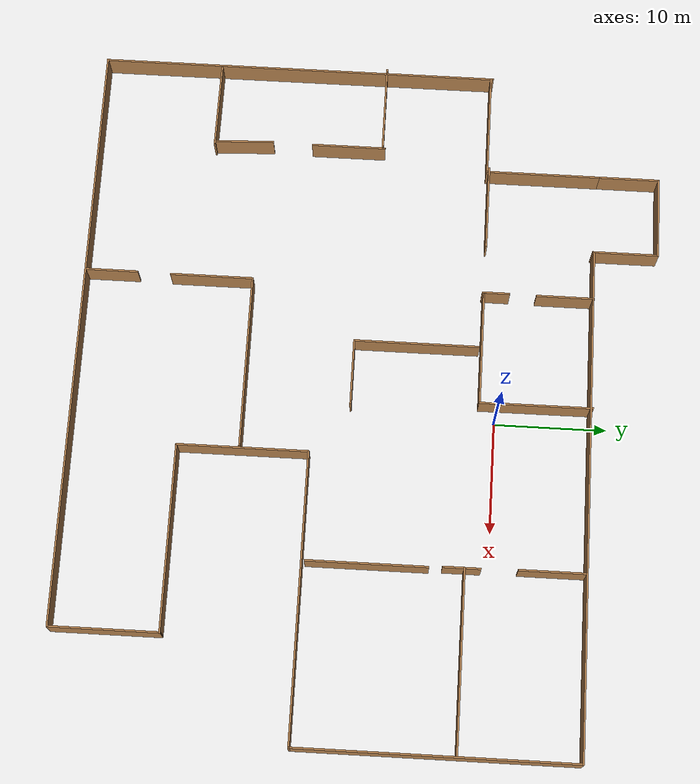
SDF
<?xml version='1.0'?>
<sdf version='1.7'>
  <model name='walls'>
    <pose>-1.78247 -11.6591 0 0 -0 0</pose>
    <link name='Wall_10'>
      <collision name='Wall_10_Collision'>
        <geometry>
          <box>
            <size>53.5217 0.15 2.5</size>
          </box>
        </geometry>
        <pose>0 0 1.25 0 -0 0</pose>
      </collision>
      <visual name='Wall_10_Visual'>
        <pose>0 0 1.25 0 -0 0</pose>
        <geometry>
          <box>
            <size>53.5217 0.15 2.5</size>
          </box>
        </geometry>
        <material>
          <script>
            <uri>file://media/materials/scripts/gazebo.material</uri>
            <name>Gazebo/Wood</name>
          </script>
          <ambient>1 1 1 1</ambient>
        </material>
        <meta>
          <layer>0</layer>
        </meta>
      </visual>
      <pose>-4.29579 -25.775 0 0 -0 3.14159</pose>
    </link>
    <link name='Wall_11'>
      <collision name='Wall_11_Collision'>
        <geometry>
          <box>
            <size>36 0.15 2.5</size>
          </box>
        </geometry>
        <pose>0 0 1.25 0 -0 0</pose>
      </collision>
      <visual name='Wall_11_Visual'>
        <pose>0 0 1.25 0 -0 0</pose>
        <geometry>
          <box>
            <size>36 0.15 2.5</size>
          </box>
        </geometry>
        <material>
          <script>
            <uri>file://media/materials/scripts/gazebo.material</uri>
            <name>Gazebo/Wood</name>
          </script>
          <ambient>1 1 1 1</ambient>
        </material>
        <meta>
          <layer>0</layer>
        </meta>
      </visual>
      <pose>-30.9816 -7.68633 0 0 -0 1.5708</pose>
    </link>
    <link name='Wall_12'>
      <collision name='Wall_12_Collision'>
        <geometry>
          <box>
            <size>9.52171 0.15 2.5</size>
          </box>
        </geometry>
        <pose>0 0 1.25 0 -0 0</pose>
      </collision>
      <visual name='Wall_12_Visual'>
        <pose>0 0 1.25 0 -0 0</pose>
        <geometry>
          <box>
            <size>9.52171 0.15 2.5</size>
          </box>
        </geometry>
        <material>
          <script>
            <uri>file://media/materials/scripts/gazebo.material</uri>
            <name>Gazebo/Wood</name>
          </script>
          <ambient>1 1 1 1</ambient>
        </material>
        <meta>
          <layer>0</layer>
        </meta>
      </visual>
      <pose>-26.2958 10.075 0 0 -0 0</pose>
    </link>
    <link name='Wall_13'>
      <collision name='Wall_13_Collision'>
        <geometry>
          <box>
            <size>10.5 0.15 2.5</size>
          </box>
        </geometry>
        <pose>0 0 1.25 0 -0 0</pose>
      </collision>
      <visual name='Wall_13_Visual'>
        <pose>0 0 1.25 0 -0 0</pose>
        <geometry>
          <box>
            <size>10.5 0.15 2.5</size>
          </box>
        </geometry>
        <material>
          <script>
            <uri>file://media/materials/scripts/gazebo.material</uri>
            <name>Gazebo/Wood</name>
          </script>
          <ambient>1 1 1 1</ambient>
        </material>
        <meta>
          <layer>0</layer>
        </meta>
      </visual>
      <pose>-21.6099 15.25 0 0 -0 1.5708</pose>
    </link>
    <link name='Wall_14'>
      <collision name='Wall_14_Collision'>
        <geometry>
          <box>
            <size>5.5 0.15 2.5</size>
          </box>
        </geometry>
        <pose>0 0 1.25 0 -0 0</pose>
      </collision>
      <visual name='Wall_14_Visual'>
        <pose>0 0 1.25 0 -0 0</pose>
        <geometry>
          <box>
            <size>5.5 0.15 2.5</size>
          </box>
        </geometry>
        <material>
          <script>
            <uri>file://media/materials/scripts/gazebo.material</uri>
            <name>Gazebo/Wood</name>
          </script>
          <ambient>1 1 1 1</ambient>
        </material>
        <meta>
          <layer>0</layer>
        </meta>
      </visual>
      <pose>-21.6099 23.1 0 0 -0 1.5708</pose>
    </link>
    <link name='Wall_15'>
      <collision name='Wall_15_Collision'>
        <geometry>
          <box>
            <size>7.5 0.15 2.5</size>
          </box>
        </geometry>
        <pose>0 0 1.25 0 -0 0</pose>
      </collision>
      <visual name='Wall_15_Visual'>
        <pose>0 0 1.25 0 -0 0</pose>
        <geometry>
          <box>
            <size>7.5 0.15 2.5</size>
          </box>
        </geometry>
        <material>
          <script>
            <uri>file://media/materials/scripts/gazebo.material</uri>
            <name>Gazebo/Wood</name>
          </script>
          <ambient>1 1 1 1</ambient>
        </material>
        <meta>
          <layer>0</layer>
        </meta>
      </visual>
      <pose>-17.9349 25.775 0 0 -0 0</pose>
    </link>
    <link name='Wall_16'>
      <collision name='Wall_16_Collision'>
        <geometry>
          <box>
            <size>6 0.15 2.5</size>
          </box>
        </geometry>
        <pose>0 0 1.25 0 -0 0</pose>
      </collision>
      <visual name='Wall_16_Visual'>
        <pose>0 0 1.25 0 -0 0</pose>
        <geometry>
          <box>
            <size>6 0.15 2.5</size>
          </box>
        </geometry>
        <material>
          <script>
            <uri>file://media/materials/scripts/gazebo.material</uri>
            <name>Gazebo/Wood</name>
          </script>
          <ambient>1 1 1 1</ambient>
        </material>
        <meta>
          <layer>0</layer>
        </meta>
      </visual>
      <pose>-14.2599 22.85 0 0 -0 -1.5708</pose>
    </link>
    <link name='Wall_20'>
      <collision name='Wall_20_Collision'>
        <geometry>
          <box>
            <size>6 0.15 2.5</size>
          </box>
        </geometry>
        <pose>0 0 1.25 0 -0 0</pose>
      </collision>
      <visual name='Wall_20_Visual'>
        <pose>0 0 1.25 0 -0 0</pose>
        <geometry>
          <box>
            <size>6 0.15 2.5</size>
          </box>
        </geometry>
        <material>
          <script>
            <uri>file://media/materials/scripts/gazebo.material</uri>
            <name>Gazebo/Wood</name>
          </script>
          <ambient>1 1 1 1</ambient>
        </material>
        <meta>
          <layer>0</layer>
        </meta>
      </visual>
      <pose>15.2986 17.0852 0 0 -0 -1.5708</pose>
    </link>
    <link name='Wall_22'>
      <collision name='Wall_22_Collision'>
        <geometry>
          <box>
            <size>16 0.15 2.5</size>
          </box>
        </geometry>
        <pose>0 0 1.25 0 -0 0</pose>
      </collision>
      <visual name='Wall_22_Visual'>
        <pose>0 0 1.25 0 -0 0</pose>
        <geometry>
          <box>
            <size>16 0.15 2.5</size>
          </box>
        </geometry>
        <material>
          <script>
            <uri>file://media/materials/scripts/gazebo.material</uri>
            <name>Gazebo/Wood</name>
          </script>
          <ambient>1 1 1 1</ambient>
        </material>
        <meta>
          <layer>0</layer>
        </meta>
      </visual>
      <pose>23.3057 9.48549 0 0 -0 3.14159</pose>
    </link>
    <link name='Wall_23'>
      <collision name='Wall_23_Collision'>
        <geometry>
          <box>
            <size>1.5 0.15 2.5</size>
          </box>
        </geometry>
        <pose>0 0 1.25 0 -0 0</pose>
      </collision>
      <visual name='Wall_23_Visual'>
        <pose>0 0 1.25 0 -0 0</pose>
        <geometry>
          <box>
            <size>1.5 0.15 2.5</size>
          </box>
        </geometry>
        <material>
          <script>
            <uri>file://media/materials/scripts/gazebo.material</uri>
            <name>Gazebo/Wood</name>
          </script>
          <ambient>1 1 1 1</ambient>
        </material>
        <meta>
          <layer>0</layer>
        </meta>
      </visual>
      <pose>15.3807 10.1605 0 0 -0 1.5708</pose>
    </link>
    <link name='Wall_25'>
      <collision name='Wall_25_Collision'>
        <geometry>
          <box>
            <size>2 0.15 2.5</size>
          </box>
        </geometry>
        <pose>0 0 1.25 0 -0 0</pose>
      </collision>
      <visual name='Wall_25_Visual'>
        <pose>0 0 1.25 0 -0 0</pose>
        <geometry>
          <box>
            <size>2 0.15 2.5</size>
          </box>
        </geometry>
        <material>
          <script>
            <uri>file://media/materials/scripts/gazebo.material</uri>
            <name>Gazebo/Wood</name>
          </script>
          <ambient>1 1 1 1</ambient>
        </material>
        <meta>
          <layer>0</layer>
        </meta>
      </visual>
      <pose>15.3807 8.56049 0 0 -0 -1.5708</pose>
    </link>
    <link name='Wall_27'>
      <collision name='Wall_27_Collision'>
        <geometry>
          <box>
            <size>10.75 0.15 2.5</size>
          </box>
        </geometry>
        <pose>0 0 1.25 0 -0 0</pose>
      </collision>
      <visual name='Wall_27_Visual'>
        <pose>0 0 1.25 0 -0 0</pose>
        <geometry>
          <box>
            <size>10.75 0.15 2.5</size>
          </box>
        </geometry>
        <material>
          <script>
            <uri>file://media/materials/scripts/gazebo.material</uri>
            <name>Gazebo/Wood</name>
          </script>
          <ambient>1 1 1 1</ambient>
        </material>
        <meta>
          <layer>0</layer>
        </meta>
      </visual>
      <pose>15.4704 1.05331 0 0 -0 -1.5708</pose>
    </link>
    <link name='Wall_29'>
      <collision name='Wall_29_Collision'>
        <geometry>
          <box>
            <size>10.1129 0.15 2.5</size>
          </box>
        </geometry>
        <pose>0 0 1.25 0 -0 0</pose>
      </collision>
      <visual name='Wall_29_Visual'>
        <pose>0 0 1.25 0 -0 0</pose>
        <geometry>
          <box>
            <size>10.1129 0.15 2.5</size>
          </box>
        </geometry>
        <material>
          <script>
            <uri>file://media/materials/scripts/gazebo.material</uri>
            <name>Gazebo/Wood</name>
          </script>
          <ambient>1 1 1 1</ambient>
        </material>
        <meta>
          <layer>0</layer>
        </meta>
      </visual>
      <pose>0.506797 15.1957 0 0 -0 -1.56767</pose>
    </link>
    <link name='Wall_30'>
      <collision name='Wall_30_Collision'>
        <geometry>
          <box>
            <size>10.25 0.15 2.5</size>
          </box>
        </geometry>
        <pose>0 0 1.25 0 -0 0</pose>
      </collision>
      <visual name='Wall_30_Visual'>
        <pose>0 0 1.25 0 -0 0</pose>
        <geometry>
          <box>
            <size>10.25 0.15 2.5</size>
          </box>
        </geometry>
        <material>
          <script>
            <uri>file://media/materials/scripts/gazebo.material</uri>
            <name>Gazebo/Wood</name>
          </script>
          <ambient>1 1 1 1</ambient>
        </material>
        <meta>
          <layer>0</layer>
        </meta>
      </visual>
      <pose>-4.58952 10.2145 0 0 -0 3.14159</pose>
    </link>
    <link name='Wall_32'>
      <collision name='Wall_32_Collision'>
        <geometry>
          <box>
            <size>7.75 0.15 2.5</size>
          </box>
        </geometry>
        <pose>0 0 1.25 0 -0 0</pose>
      </collision>
      <visual name='Wall_32_Visual'>
        <pose>0 0 1.25 0 -0 0</pose>
        <geometry>
          <box>
            <size>7.75 0.15 2.5</size>
          </box>
        </geometry>
        <material>
          <script>
            <uri>file://media/materials/scripts/gazebo.material</uri>
            <name>Gazebo/Wood</name>
          </script>
          <ambient>1 1 1 1</ambient>
        </material>
        <meta>
          <layer>0</layer>
        </meta>
      </visual>
      <pose>-18.1561 10.2419 0 0 -0 0</pose>
    </link>
    <link name='Wall_34'>
      <collision name='Wall_34_Collision'>
        <geometry>
          <box>
            <size>5.25 0.15 2.5</size>
          </box>
        </geometry>
        <pose>0 0 1.25 0 -0 0</pose>
      </collision>
      <visual name='Wall_34_Visual'>
        <pose>0 0 1.25 0 -0 0</pose>
        <geometry>
          <box>
            <size>5.25 0.15 2.5</size>
          </box>
        </geometry>
        <material>
          <script>
            <uri>file://media/materials/scripts/gazebo.material</uri>
            <name>Gazebo/Wood</name>
          </script>
          <ambient>1 1 1 1</ambient>
        </material>
        <meta>
          <layer>0</layer>
        </meta>
      </visual>
      <pose>-9.77624 17.5261 0 0 -0 -1.5708</pose>
    </link>
    <link name='Wall_36'>
      <collision name='Wall_36_Collision'>
        <geometry>
          <box>
            <size>2.5 0.15 2.5</size>
          </box>
        </geometry>
        <pose>0 0 1.25 0 -0 0</pose>
      </collision>
      <visual name='Wall_36_Visual'>
        <pose>0 0 1.25 0 -0 0</pose>
        <geometry>
          <box>
            <size>2.5 0.15 2.5</size>
          </box>
        </geometry>
        <material>
          <script>
            <uri>file://media/materials/scripts/gazebo.material</uri>
            <name>Gazebo/Wood</name>
          </script>
          <ambient>1 1 1 1</ambient>
        </material>
        <meta>
          <layer>0</layer>
        </meta>
      </visual>
      <pose>-9.82303 11.2852 0 0 -0 1.5708</pose>
    </link>
    <link name='Wall_4'>
      <collision name='Wall_4_Collision'>
        <geometry>
          <box>
            <size>45.75 0.15 2.5</size>
          </box>
        </geometry>
        <pose>0 0 1.25 0 -0 0</pose>
      </collision>
      <visual name='Wall_4_Visual'>
        <pose>0 0 1.25 0 -0 0</pose>
        <geometry>
          <box>
            <size>45.75 0.15 2.5</size>
          </box>
        </geometry>
        <material>
          <script>
            <uri>file://media/materials/scripts/gazebo.material</uri>
            <name>Gazebo/Wood</name>
          </script>
          <ambient>1 1 1 1</ambient>
        </material>
        <meta>
          <layer>0</layer>
        </meta>
      </visual>
      <pose>8.59007 20.025 0 0 -0 0</pose>
    </link>
    <link name='Wall_5'>
      <collision name='Wall_5_Collision'>
        <geometry>
          <box>
            <size>24.75 0.15 2.5</size>
          </box>
        </geometry>
        <pose>0 0 1.25 0 -0 0</pose>
      </collision>
      <visual name='Wall_5_Visual'>
        <pose>0 0 1.25 0 -0 0</pose>
        <geometry>
          <box>
            <size>24.75 0.15 2.5</size>
          </box>
        </geometry>
        <material>
          <script>
            <uri>file://media/materials/scripts/gazebo.material</uri>
            <name>Gazebo/Wood</name>
          </script>
          <ambient>1 1 1 1</ambient>
        </material>
        <meta>
          <layer>0</layer>
        </meta>
      </visual>
      <pose>31.3901 7.725 0 0 -0 -1.5708</pose>
    </link>
    <link name='Wall_6'>
      <collision name='Wall_6_Collision'>
        <geometry>
          <box>
            <size>25.75 0.15 2.5</size>
          </box>
        </geometry>
        <pose>0 0 1.25 0 -0 0</pose>
      </collision>
      <visual name='Wall_6_Visual'>
        <pose>0 0 1.25 0 -0 0</pose>
        <geometry>
          <box>
            <size>25.75 0.15 2.5</size>
          </box>
        </geometry>
        <material>
          <script>
            <uri>file://media/materials/scripts/gazebo.material</uri>
            <name>Gazebo/Wood</name>
          </script>
          <ambient>1 1 1 1</ambient>
        </material>
        <meta>
          <layer>0</layer>
        </meta>
      </visual>
      <pose>18.5901 -4.575 0 0 -0 3.14159</pose>
    </link>
    <link name='Wall_61'>
      <collision name='Wall_61_Collision'>
        <geometry>
          <box>
            <size>15.75 0.15 2.5</size>
          </box>
        </geometry>
        <pose>0 0 1.25 0 -0 0</pose>
      </collision>
      <visual name='Wall_61_Visual'>
        <pose>0 0 1.25 0 -0 0</pose>
        <geometry>
          <box>
            <size>15.75 0.15 2.5</size>
          </box>
        </geometry>
        <material>
          <script>
            <uri>file://media/materials/scripts/gazebo.material</uri>
            <name>Gazebo/Wood</name>
          </script>
          <ambient>1 1 1 1</ambient>
        </material>
        <meta>
          <layer>0</layer>
        </meta>
      </visual>
      <pose>-2.21831 -10.6582 0 0 -0 3.14159</pose>
    </link>
    <link name='Wall_62'>
      <collision name='Wall_62_Collision'>
        <geometry>
          <box>
            <size>7.5 0.15 2.5</size>
          </box>
        </geometry>
        <pose>0 0 1.25 0 -0 0</pose>
      </collision>
      <visual name='Wall_62_Visual'>
        <pose>0 0 1.25 0 -0 0</pose>
        <geometry>
          <box>
            <size>7.5 0.15 2.5</size>
          </box>
        </geometry>
        <material>
          <script>
            <uri>file://media/materials/scripts/gazebo.material</uri>
            <name>Gazebo/Wood</name>
          </script>
          <ambient>1 1 1 1</ambient>
        </material>
        <meta>
          <layer>0</layer>
        </meta>
      </visual>
      <pose>-10.0183 -14.3332 0 0 -0 -1.5708</pose>
    </link>
    <link name='Wall_64'>
      <collision name='Wall_64_Collision'>
        <geometry>
          <box>
            <size>4.75 0.15 2.5</size>
          </box>
        </geometry>
        <pose>0 0 1.25 0 -0 0</pose>
      </collision>
      <visual name='Wall_64_Visual'>
        <pose>0 0 1.25 0 -0 0</pose>
        <geometry>
          <box>
            <size>4.75 0.15 2.5</size>
          </box>
        </geometry>
        <material>
          <script>
            <uri>file://media/materials/scripts/gazebo.material</uri>
            <name>Gazebo/Wood</name>
          </script>
          <ambient>1 1 1 1</ambient>
        </material>
        <meta>
          <layer>0</layer>
        </meta>
      </visual>
      <pose>-10.0803 -23.3969 0 0 -0 -1.5708</pose>
    </link>
    <link name='Wall_66'>
      <collision name='Wall_66_Collision'>
        <geometry>
          <box>
            <size>11.25 0.15 2.5</size>
          </box>
        </geometry>
        <pose>0 0 1.25 0 -0 0</pose>
      </collision>
      <visual name='Wall_66_Visual'>
        <pose>0 0 1.25 0 -0 0</pose>
        <geometry>
          <box>
            <size>11.25 0.15 2.5</size>
          </box>
        </geometry>
        <material>
          <script>
            <uri>file://media/materials/scripts/gazebo.material</uri>
            <name>Gazebo/Wood</name>
          </script>
          <ambient>1 1 1 1</ambient>
        </material>
        <meta>
          <layer>0</layer>
        </meta>
      </visual>
      <pose>-4.64912 4.38032 0 0 -0 -1.5708</pose>
    </link>
    <link name='Wall_67'>
      <collision name='Wall_67_Collision'>
        <geometry>
          <box>
            <size>6 0.15 2.5</size>
          </box>
        </geometry>
        <pose>0 0 1.25 0 -0 0</pose>
      </collision>
      <visual name='Wall_67_Visual'>
        <pose>0 0 1.25 0 -0 0</pose>
        <geometry>
          <box>
            <size>6 0.15 2.5</size>
          </box>
        </geometry>
        <material>
          <script>
            <uri>file://media/materials/scripts/gazebo.material</uri>
            <name>Gazebo/Wood</name>
          </script>
          <ambient>1 1 1 1</ambient>
        </material>
        <meta>
          <layer>0</layer>
        </meta>
      </visual>
      <pose>-1.72412 -1.16969 0 0 -0 0</pose>
    </link>
    <link name='Wall_69'>
      <collision name='Wall_69_Collision'>
        <geometry>
          <box>
            <size>8.12643 0.15 2.5</size>
          </box>
        </geometry>
        <pose>0 0 1.25 0 -0 0</pose>
      </collision>
      <visual name='Wall_69_Visual'>
        <pose>0 0 1.25 0 -0 0</pose>
        <geometry>
          <box>
            <size>8.12643 0.15 2.5</size>
          </box>
        </geometry>
        <material>
          <script>
            <uri>file://media/materials/scripts/gazebo.material</uri>
            <name>Gazebo/Wood</name>
          </script>
          <ambient>1 1 1 1</ambient>
        </material>
        <meta>
          <layer>0</layer>
        </meta>
      </visual>
      <pose>-27.4019 0.353762 0 0 -0 0</pose>
    </link>
    <link name='Wall_7'>
      <collision name='Wall_7_Collision'>
        <geometry>
          <box>
            <size>11.75 0.15 2.5</size>
          </box>
        </geometry>
        <pose>0 0 1.25 0 -0 0</pose>
      </collision>
      <visual name='Wall_7_Visual'>
        <pose>0 0 1.25 0 -0 0</pose>
        <geometry>
          <box>
            <size>11.75 0.15 2.5</size>
          </box>
        </geometry>
        <material>
          <script>
            <uri>file://media/materials/scripts/gazebo.material</uri>
            <name>Gazebo/Wood</name>
          </script>
          <ambient>1 1 1 1</ambient>
        </material>
        <meta>
          <layer>0</layer>
        </meta>
      </visual>
      <pose>5.79007 -10.375 0 0 -0 -1.5708</pose>
    </link>
    <link name='Wall_70'>
      <collision name='Wall_70_Collision'>
        <geometry>
          <box>
            <size>6.75 0.15 2.5</size>
          </box>
        </geometry>
        <pose>0 0 1.25 0 -0 0</pose>
      </collision>
      <visual name='Wall_70_Visual'>
        <pose>0 0 1.25 0 -0 0</pose>
        <geometry>
          <box>
            <size>6.75 0.15 2.5</size>
          </box>
        </geometry>
        <material>
          <script>
            <uri>file://media/materials/scripts/gazebo.material</uri>
            <name>Gazebo/Wood</name>
          </script>
          <ambient>1 1 1 1</ambient>
        </material>
        <meta>
          <layer>0</layer>
        </meta>
      </visual>
      <pose>-23.4136 -2.75802 0 0 -0 -1.5708</pose>
    </link>
    <link name='Wall_72'>
      <collision name='Wall_72_Collision'>
        <geometry>
          <box>
            <size>7.86001 0.15 2.5</size>
          </box>
        </geometry>
        <pose>0 0 1.25 0 -0 0</pose>
      </collision>
      <visual name='Wall_72_Visual'>
        <pose>0 0 1.25 0 -0 0</pose>
        <geometry>
          <box>
            <size>7.86001 0.15 2.5</size>
          </box>
        </geometry>
        <material>
          <script>
            <uri>file://media/materials/scripts/gazebo.material</uri>
            <name>Gazebo/Wood</name>
          </script>
          <ambient>1 1 1 1</ambient>
        </material>
        <meta>
          <layer>0</layer>
        </meta>
      </visual>
      <pose>-26.9368 -15.0786 0 0 -0 -0.012413</pose>
    </link>
    <link name='Wall_73'>
      <collision name='Wall_73_Collision'>
        <geometry>
          <box>
            <size>5.50433 0.15 2.5</size>
          </box>
        </geometry>
        <pose>0 0 1.25 0 -0 0</pose>
      </collision>
      <visual name='Wall_73_Visual'>
        <pose>0 0 1.25 0 -0 0</pose>
        <geometry>
          <box>
            <size>5.50433 0.15 2.5</size>
          </box>
        </geometry>
        <material>
          <script>
            <uri>file://media/materials/scripts/gazebo.material</uri>
            <name>Gazebo/Wood</name>
          </script>
          <ambient>1 1 1 1</ambient>
        </material>
        <meta>
          <layer>0</layer>
        </meta>
      </visual>
      <pose>-23.3779 -12.4515 0 0 -0 1.611</pose>
    </link>
    <link name='Wall_8'>
      <collision name='Wall_8_Collision'>
        <geometry>
          <box>
            <size>16.75 0.15 2.5</size>
          </box>
        </geometry>
        <pose>0 0 1.25 0 -0 0</pose>
      </collision>
      <visual name='Wall_8_Visual'>
        <pose>0 0 1.25 0 -0 0</pose>
        <geometry>
          <box>
            <size>16.75 0.15 2.5</size>
          </box>
        </geometry>
        <material>
          <script>
            <uri>file://media/materials/scripts/gazebo.material</uri>
            <name>Gazebo/Wood</name>
          </script>
          <ambient>1 1 1 1</ambient>
        </material>
        <meta>
          <layer>0</layer>
        </meta>
      </visual>
      <pose>14.0901 -16.175 0 0 -0 0</pose>
    </link>
    <link name='Wall_9'>
      <collision name='Wall_9_Collision'>
        <geometry>
          <box>
            <size>9.75 0.15 2.5</size>
          </box>
        </geometry>
        <pose>0 0 1.25 0 -0 0</pose>
      </collision>
      <visual name='Wall_9_Visual'>
        <pose>0 0 1.25 0 -0 0</pose>
        <geometry>
          <box>
            <size>9.75 0.15 2.5</size>
          </box>
        </geometry>
        <material>
          <script>
            <uri>file://media/materials/scripts/gazebo.material</uri>
            <name>Gazebo/Wood</name>
          </script>
          <ambient>1 1 1 1</ambient>
        </material>
        <meta>
          <layer>0</layer>
        </meta>
      </visual>
      <pose>22.3901 -20.975 0 0 -0 -1.5708</pose>
    </link>
    <static>1</static>
  </model>
</sdf>
